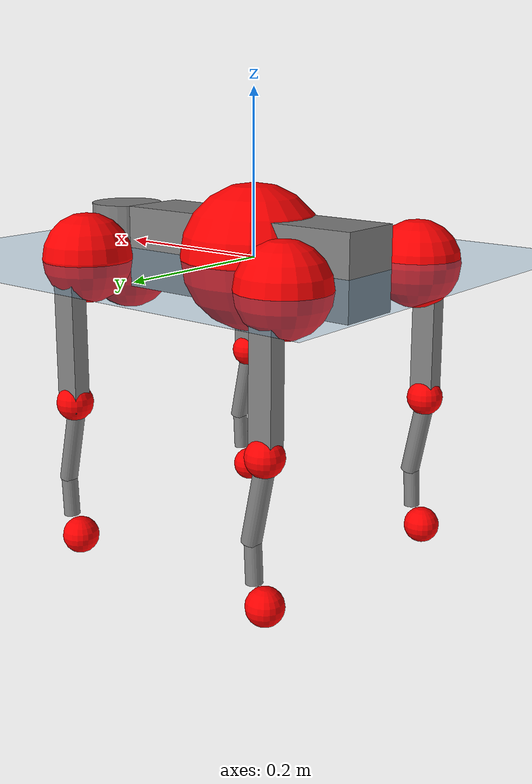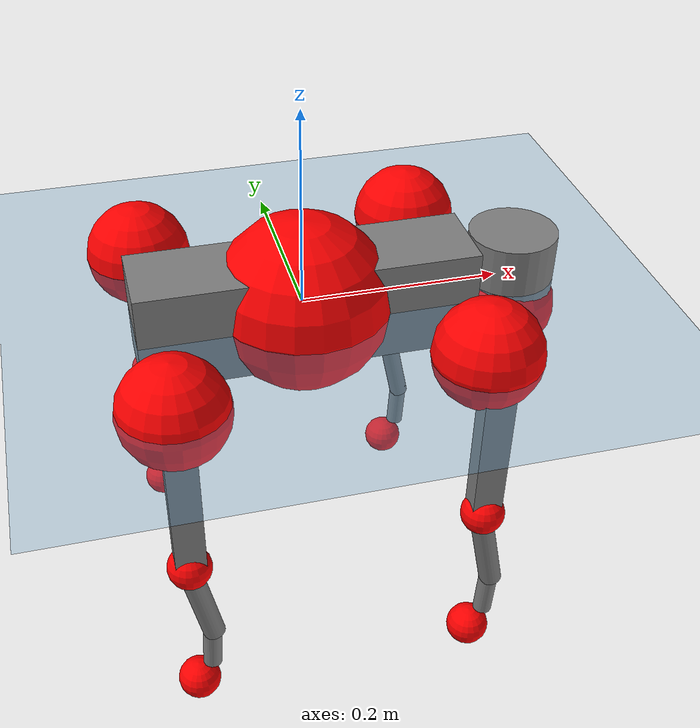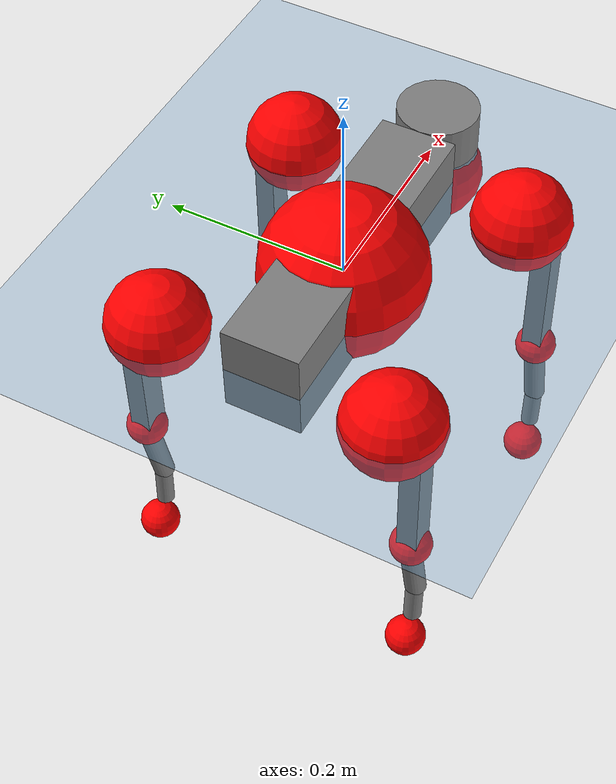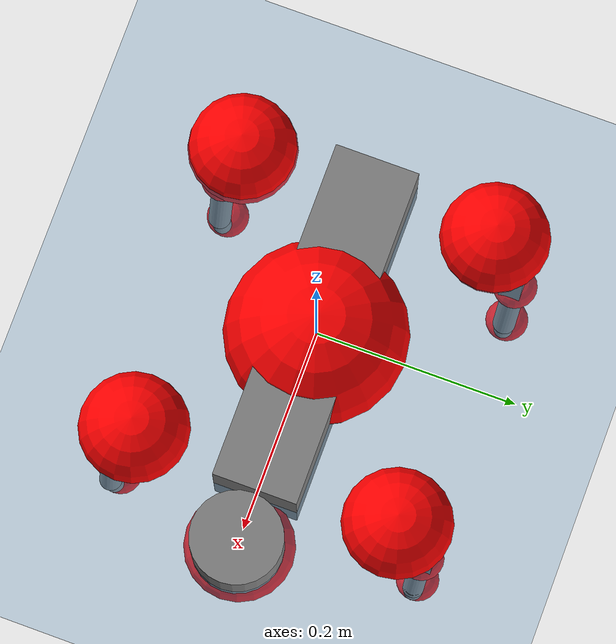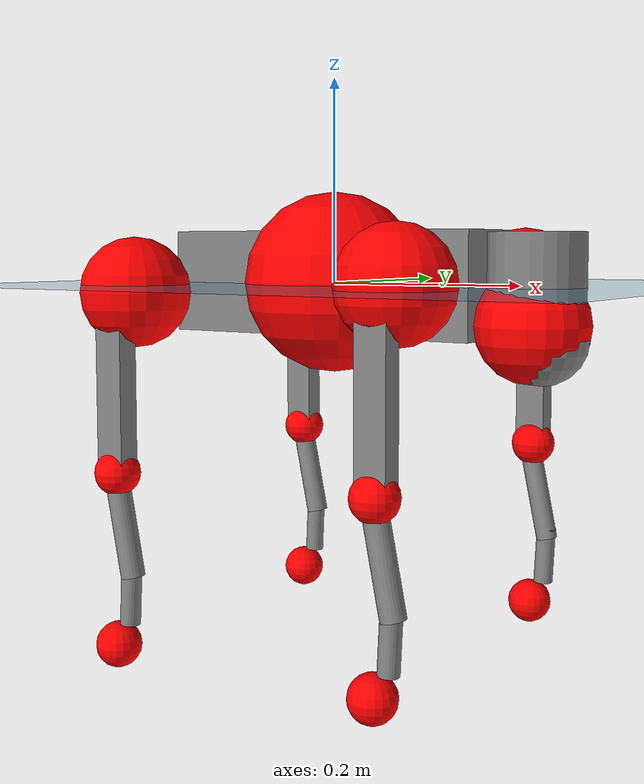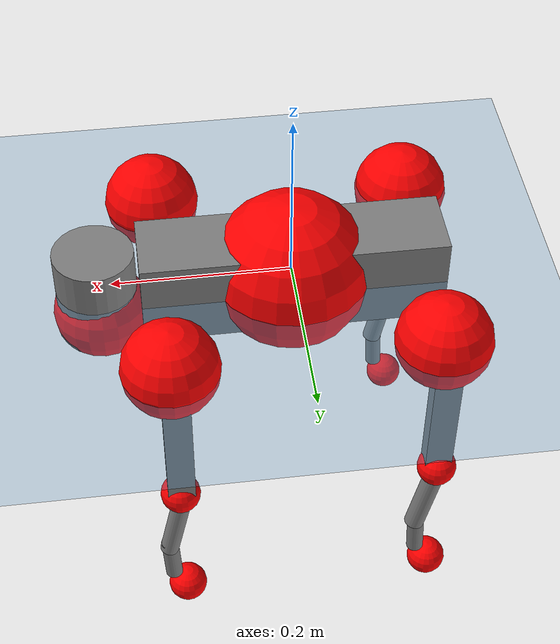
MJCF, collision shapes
<mujoco model="go2">
  <compiler angle="radian" assetdir="assets" balanceinertia="true" inertiafromgeom="false"/>

  <option timestep="0.005" density="1.2" viscosity="2e-05"/>

  <size nkey="1"/>

  <visual>
    <quality shadowsize="8192"/>
    <map shadowclip="0.5"/>
  </visual>

  <default>
    <default class="/">
      <geom contype="0" conaffinity="0" group="1" solref="-1000 -80"/>
      <site size="0.01 0.005 0.005" group="5"/>
      <general forcelimited="true" biastype="affine" gainprm="20" biasprm="0 -20 -0.5"/>
      <default class="go2">
        <joint armature="0.01" damping="0.01" frictionloss="0.2"/>
        <geom condim="1" margin="0.001"/>
        <default class="visual">
          <geom type="mesh" group="2"/>
        </default>
        <default class="collision">
          <geom group="3"/>
          <default class="foot">
            <geom size="0.022 0 0" condim="6" priority="1" friction="0.8 0.02 0.01" solimp="0.015 1 0.022"/>
          </default>
        </default>
        <default class="reward_collision_sphere">
          <geom group="5" rgba="1 0 0 1"/>
        </default>
      </default>
    </default>
  </default>

  <asset>
    <texture type="skybox" colorspace="auto" name="//unnamed_texture_0" builtin="gradient" rgb1="0.95 0.95 0.95" rgb2="0.95 0.95 0.95" width="100" height="600"/>
    <texture type="2d" colorspace="auto" name="texplane" builtin="checker" rgb1="0.345 0.575 0.748" rgb2="0.345 0.575 0.748" markrgb="1 1 1" width="512" height="512"/>
    <material name="MatPlane" class="/" texture="texplane" texuniform="true" texrepeat="2 2" specular="0.9"/>
    <material name="metal" class="/" rgba="0.9 0.95 0.95 1"/>
    <material name="black" class="/" rgba="0 0 0 1"/>
    <material name="white" class="/"/>
    <material name="gray" class="/" rgba="0.671705 0.692426 0.77427 1"/>
    <mesh name="base_0" class="/" file="base_0.obj"/>
    <mesh name="base_1" class="/" file="base_1.obj"/>
    <mesh name="base_2" class="/" file="base_2.obj"/>
    <mesh name="base_3" class="/" file="base_3.obj"/>
    <mesh name="base_4" class="/" file="base_4.obj"/>
    <mesh name="hip_0" class="/" file="hip_0.obj"/>
    <mesh name="hip_1" class="/" file="hip_1.obj"/>
    <mesh name="thigh_0" class="/" file="thigh_0.obj"/>
    <mesh name="thigh_1" class="/" file="thigh_1.obj"/>
    <mesh name="thigh_mirror_0" class="/" file="thigh_mirror_0.obj"/>
    <mesh name="thigh_mirror_1" class="/" file="thigh_mirror_1.obj"/>
    <mesh name="calf_0" class="/" file="calf_0.obj"/>
    <mesh name="calf_1" class="/" file="calf_1.obj"/>
    <mesh name="calf_mirror_0" class="/" file="calf_mirror_0.obj"/>
    <mesh name="calf_mirror_1" class="/" file="calf_mirror_1.obj"/>
    <mesh name="foot" class="/" file="foot.obj"/>
  </asset>

  <worldbody>
    <geom name="floor" class="/" size="100 100 0.125" type="plane" group="0" material="MatPlane"/>
    <light name="toplight_shadow" class="/" pos="0 0 5" dir="0.0990148 0.0990148 -0.990148" type="directional" ambient="0.04 0.04 0.04" diffuse="0.55 0.55 0.55" specular="0.12 0.12 0.12"/>
    <light name="toplight_fill" class="/" pos="0 0 5" dir="0.0990148 0.0990148 -0.990148" type="directional" castshadow="false" ambient="0.04 0.04 0.04" diffuse="0.3 0.3 0.3" specular="0.08 0.08 0.08"/>
    <body name="trunk" childclass="go2" pos="0.000195723 -1.91244e-05 0.000567894" quat="1 -4.8546e-05 -5.17786e-05 3.70808e-05">
      <inertial pos="0.0159478 0.00106457 -0.00413545" quat="-0.00085087 0.712065 -0.00240514 0.702109" mass="4.7384" diaginertia="0.0261186 0.166779 0.00796252"/>
      <joint name="//unnamed_joint_0" type="free" armature="0" damping="0" frictionloss="0"/>
      <geom name="//unnamed_geom_1" class="visual" material="black" mesh="base_0"/>
      <geom name="//unnamed_geom_2" class="visual" material="black" mesh="base_1"/>
      <geom name="//unnamed_geom_3" class="visual" material="black" mesh="base_2"/>
      <geom name="//unnamed_geom_4" class="visual" material="white" mesh="base_3"/>
      <geom name="//unnamed_geom_5" class="visual" material="gray" mesh="base_4"/>
      <geom name="trunk_1" class="collision" size="0.16792 0.0417346 0.050885" type="box"/>
      <geom name="trunk_2" class="collision" size="0.044636 0.0401724" pos="0.215556 0 0.00803098" type="cylinder"/>
      <geom name="trunk_3" class="collision" size="0.0419578" pos="0.221606 0 -0.0481859"/>
      <geom name="//unnamed_geom_9" class="reward_collision_sphere" size="0.0892719"/>
      <geom name="//unnamed_geom_10" class="reward_collision_sphere" size="0.0535631" pos="0.211774 0 -0.0361394"/>
      <site name="imu" pos="-0.0134551 0.0131326 0.0257707" size="0.00892719"/>
      <camera name="track" pos="0 -2.23745 0" quat="0.707107 0.707107 0 0" mode="trackcom"/>
      <camera name="ego_camera" pos="0.235977 0 0.0361394" quat="-0.5 -0.5 0.5 0.5"/>
      <body name="FL_hip" pos="0.144862 0.0559471 0.00104122" quat="1 -0.000197212 -0.000121584 4.74883e-05">
        <inertial pos="-0.00469654 0.00124122 0.00100075" quat="0.497053 0.500331 0.505818 0.496745" mass="0.465061" diaginertia="0.000216658 0.000982098 0.000155408"/>
        <joint name="FL_hip_joint" pos="0 0 0" axis="0.999992 -0.00320536 -0.00254899" range="-1.05188 1.10403" armature="0.00891891" damping="0" frictionloss="0.203173"/>
        <geom name="//unnamed_geom_11" class="visual" material="metal" mesh="hip_0"/>
        <geom name="//unnamed_geom_12" class="visual" material="gray" mesh="hip_1"/>
        <geom name="//unnamed_geom_13" class="collision" size="0.0410651 0.0178544" pos="0 0.0894979 0" quat="0.707107 0.707107 0 0" type="cylinder"/>
        <geom name="//unnamed_geom_14" class="reward_collision_sphere" size="0.0535631" pos="0 0.0783106 0"/>
        <body name="FL_thigh" pos="-0.00177573 0.109749 -0.000615832" quat="1 3.88474e-05 -1.04849e-05 8.26813e-06">
          <inertial pos="-0.00378553 -0.0252944 -0.0251502" quat="0.831466 0.0931278 -0.0269208 0.547053" mass="0.827309" diaginertia="0.00148087 0.0101298 0.000285085"/>
          <joint name="FL_thigh_joint" pos="0 0 0" axis="0.00598196 0.999964 -0.00605321" stiffness="0.00156226" range="-1.62225 3.50476" armature="0.00813472" damping="0.0165107" frictionloss="0.179054"/>
          <geom name="//unnamed_geom_15" class="visual" material="metal" mesh="thigh_0"/>
          <geom name="//unnamed_geom_16" class="visual" material="gray" mesh="thigh_1"/>
          <geom name="//unnamed_geom_17" class="collision" size="0.0950746 0.0109358 0.0151762" pos="0 0 -0.08553" quat="0.707107 0 0.707107 0" type="box"/>
          <body name="FL_calf" pos="0.00109456 -0.00231887 -0.17203" quat="1 6.29149e-05 1.11631e-05 2.26378e-05">
            <inertial pos="0.00621484 -0.00065172 -0.111757" quat="0.707854 0.00190012 -0.00204684 0.706353" mass="0.173072" diaginertia="0.000371802 0.00258777 1.79957e-05"/>
            <joint name="FL_calf_joint" pos="0 0 0" axis="-0.000664272 0.999954 0.00957566" range="-2.6965 -0.783982" armature="0.00814736" damping="0" frictionloss="0.170885"/>
            <geom name="//unnamed_geom_18" class="visual" material="gray" mesh="calf_0"/>
            <geom name="//unnamed_geom_19" class="visual" material="black" mesh="calf_1"/>
            <geom name="FL_calf0" class="collision" size="0.0107126 0.0535631" pos="0.00605069 0 -0.0481859" quat="0.994493 0 -0.104807 0" type="cylinder"/>
            <geom name="//unnamed_geom_21" class="collision" size="0.00981991 0.0290134" pos="0.0151267 0 -0.118859" quat="0.999688 0 0.0249974 0" type="cylinder"/>
            <geom name="//unnamed_geom_22" class="visual" pos="0 0 -0.17106" quat="1 0 0 0" material="black" mesh="foot"/>
            <geom name="FL_foot" class="foot" size="0.0161373" pos="-0.00151267 0 -0.17106"/>
            <geom name="//unnamed_geom_24" class="reward_collision_sphere" size="0.022318"/>
            <geom name="//unnamed_geom_25" class="reward_collision_sphere" size="0.022318" pos="-0.00151267 0 -0.17106"/>
            <site name="FL_foot" class="foot" pos="-0.00151267 0 -0.17106" size="0.00892719"/>
          </body>
        </body>
      </body>
      <body name="FR_hip" pos="0.144957 -0.0518382 0.00312692" quat="1 -0.000297426 -0.000122584 0.000273276">
        <inertial pos="-0.00627455 -0.00261493 -0.00163398" quat="0.499923 0.507067 0.498686 0.494239" mass="0.46398" diaginertia="0.000215011 0.00102515 0.000156485"/>
        <joint name="FR_hip_joint" pos="0 0 0" axis="0.999914 0.0102481 -0.00820302" stiffness="0.000660216" range="-1.04063 0.993803" armature="0.00969481" damping="0" frictionloss="0.200075"/>
        <geom name="//unnamed_geom_26" class="visual" pos="0 2.74959e-09 1.17936e-07" quat="4.63268e-05 1 0 0" material="metal" mesh="hip_0"/>
        <geom name="//unnamed_geom_27" class="visual" pos="0 4.45742e-09 -2.917e-07" quat="4.63268e-05 1 0 0" material="gray" mesh="hip_1"/>
        <geom name="//unnamed_geom_28" class="collision" size="0.0410651 0.0178544" pos="0 -0.0894979 0" quat="0.707107 0.707107 0 0" type="cylinder"/>
        <geom name="//unnamed_geom_29" class="reward_collision_sphere" size="0.0535631" pos="0 -0.0783106 0"/>
        <body name="FR_thigh" pos="0.000168506 -0.109416 -0.00337993" quat="0.999999 -0.000560415 -2.93974e-05 0.00126209">
          <inertial pos="-0.00497286 0.0238859 -0.029076" quat="0.553855 -0.0101263 0.0875166 0.827939" mass="0.834047" diaginertia="0.00144861 0.0100143 0.000302584"/>
          <joint name="FR_thigh_joint" pos="0 0 0" axis="-0.000300335 -0.999999 -0.00105218" stiffness="0.00426269" range="-3.48715 1.51618" armature="0.0075676" damping="0.0198074" frictionloss="0.164543"/>
          <geom name="//unnamed_geom_30" class="visual" material="metal" mesh="thigh_mirror_0"/>
          <geom name="//unnamed_geom_31" class="visual" material="gray" mesh="thigh_mirror_1"/>
          <geom name="//unnamed_geom_32" class="collision" size="0.0950746 0.0109358 0.0151762" pos="0 0 -0.08553" quat="0.707107 0 0.707107 0" type="box"/>
          <body name="FR_calf" pos="-0.00037182 -0.000892093 -0.171633" quat="1 8.65449e-05 -0.000342313 0.000575852">
            <inertial pos="0.00291018 0.000358039 -0.112448" quat="0.70267 -0.00967809 -3.67074e-05 0.71145" mass="0.169497" diaginertia="0.000371029 0.00258056 1.7141e-05"/>
            <joint name="FR_calf_joint" pos="0 0 0" axis="0.00582961 -0.999983 -0.000902531" range="0.854116 2.72547" armature="0.00890773" damping="0.00162287" frictionloss="0.153632"/>
            <geom name="//unnamed_geom_33" class="visual" material="gray" mesh="calf_mirror_0"/>
            <geom name="//unnamed_geom_34" class="visual" material="black" mesh="calf_mirror_1"/>
            <geom name="FR_calf0" class="collision" size="0.0116053 0.0535631" pos="0.00756336 0 -0.0481859" quat="0.995004 0 -0.0998334 0" type="cylinder"/>
            <geom name="//unnamed_geom_36" class="collision" size="0.00981991 0.0290134" pos="0.0151267 0 -0.118859" quat="0.999688 0 0.0249974 0" type="cylinder"/>
            <geom name="//unnamed_geom_37" class="visual" pos="0 0 -0.17106" quat="1 0 0 0" material="black" mesh="foot"/>
            <geom name="FR_foot" class="foot" size="0.02083" pos="-0.00151267 0 -0.17106"/>
            <geom name="//unnamed_geom_39" class="reward_collision_sphere" size="0.022318"/>
            <geom name="//unnamed_geom_40" class="reward_collision_sphere" size="0.022318" pos="-0.00151267 0 -0.17106"/>
            <site name="FR_foot" class="foot" pos="-0.00151267 0 -0.17106" size="0.00892719"/>
          </body>
        </body>
      </body>
      <body name="RL_hip" pos="-0.146316 0.0499083 -0.00080246" quat="0.999999 -0.000581992 -0.000916294 -0.000900119">
        <inertial pos="0.0018483 0.00167825 0.000582122" quat="0.515826 0.490733 0.498021 0.495055" mass="0.467023" diaginertia="0.000204193 0.00104426 0.000151724"/>
        <joint name="RL_hip_joint" pos="0 0 0" axis="-0.999993 -0.00233084 0.00292615" stiffness="0.00107712" range="-1.06475 1.05279" armature="0.00942884" damping="0.0165037" frictionloss="0.174602"/>
        <geom name="//unnamed_geom_41" class="visual" pos="4.07377e-10 0 7.98553e-08" quat="4.63268e-05 0 1 0" material="metal" mesh="hip_0"/>
        <geom name="//unnamed_geom_42" class="visual" pos="6.60407e-10 0 7.08203e-08" quat="4.63268e-05 0 1 0" material="gray" mesh="hip_1"/>
        <geom name="//unnamed_geom_43" class="collision" size="0.0410651 0.0178544" pos="0 0.0894979 0" quat="0.707107 0.707107 0 0" type="cylinder"/>
        <geom name="//unnamed_geom_44" class="reward_collision_sphere" size="0.0535631" pos="0 0.0783106 0"/>
        <body name="RL_thigh" pos="-0.000193081 0.106088 -0.00308111" quat="0.999999 0.000331672 -0.000926146 -0.000264955">
          <inertial pos="-0.00393227 -0.0267641 -0.0253615" quat="0.829558 0.0847143 -0.0199837 0.551595" mass="0.813392" diaginertia="0.0014471 0.0101033 0.000295972"/>
          <joint name="RL_thigh_joint" pos="0 0 0" axis="0.00577083 0.999982 0.00134964" stiffness="0.0125863" range="-0.570785 4.52332" armature="0.00846996" damping="0.0203478" frictionloss="0.203589"/>
          <geom name="//unnamed_geom_45" class="visual" material="metal" mesh="thigh_0"/>
          <geom name="//unnamed_geom_46" class="visual" material="gray" mesh="thigh_1"/>
          <geom name="//unnamed_geom_47" class="collision" size="0.0950746 0.0109358 0.0151762" pos="0 0 -0.08553" quat="0.707107 0 0.707107 0" type="box"/>
          <body name="RL_calf" pos="-0.00059375 0.0022025 -0.171956" quat="1 0.00029046 -0.000711416 6.54195e-06">
            <inertial pos="0.00508978 0.00150418 -0.112532" quat="0.711743 0.000444046 -0.00308673 0.702433" mass="0.165326" diaginertia="0.000361362 0.00241152 1.78893e-05"/>
            <joint name="RL_calf_joint" pos="0 0 0" axis="0.0124417 0.999921 0.00178386" range="-2.70909 -0.807761" armature="0.00907228" damping="0.0123123" frictionloss="0.174695"/>
            <geom name="//unnamed_geom_48" class="visual" material="gray" mesh="calf_0"/>
            <geom name="//unnamed_geom_49" class="visual" material="black" mesh="calf_1"/>
            <geom name="RL_calf0" class="collision" size="0.0116053 0.0535631" pos="0.00756336 0 -0.0481859" quat="0.995004 0 -0.0998334 0" type="cylinder"/>
            <geom name="//unnamed_geom_51" class="collision" size="0.00981991 0.0290134" pos="0.0151267 0 -0.118859" quat="0.999688 0 0.0249974 0" type="cylinder"/>
            <geom name="//unnamed_geom_52" class="visual" pos="0 0 -0.17106" quat="1 0 0 0" material="black" mesh="foot"/>
            <geom name="RL_foot" class="foot" size="0.0210645" pos="-0.00151267 0 -0.17106"/>
            <geom name="//unnamed_geom_54" class="reward_collision_sphere" size="0.022318"/>
            <geom name="//unnamed_geom_55" class="reward_collision_sphere" size="0.022318" pos="-0.00151267 0 -0.17106"/>
            <site name="RL_foot" class="foot" pos="-0.00151267 0 -0.17106" size="0.00892719"/>
          </body>
        </body>
      </body>
      <body name="RR_hip" pos="-0.14729 -0.0508104 -0.00885814" quat="1 -1.82108e-05 0.000378929 9.45049e-05">
        <inertial pos="0.00249674 -0.0045057 0.00119283" quat="0.499572 0.498254 0.497314 0.504827" mass="0.487942" diaginertia="0.000217087 0.00102506 0.000164644"/>
        <joint name="RR_hip_joint" pos="0 0 0" axis="-0.99998 0.000600044 0.00637144" range="-1.10161 1.04775" armature="0.00889458" damping="0.000456368" frictionloss="0.167679"/>
        <geom name="//unnamed_geom_56" class="visual" pos="-3.94831e-10 2.74959e-09 -3.80804e-08" quat="2.14617e-09 4.63268e-05 4.63268e-05 -1" material="metal" mesh="hip_0"/>
        <geom name="//unnamed_geom_57" class="visual" pos="-6.91438e-10 4.45742e-09 3.6252e-07" quat="2.14617e-09 4.63268e-05 4.63268e-05 -1" material="gray" mesh="hip_1"/>
        <geom name="//unnamed_geom_58" class="collision" size="0.0410651 0.0178544" pos="0 -0.0894979 0" quat="0.707107 0.707107 0 0" type="cylinder"/>
        <geom name="//unnamed_geom_59" class="reward_collision_sphere" size="0.0535631" pos="0 -0.0783106 0"/>
        <body name="RR_thigh" pos="-0.00172642 -0.105071 -0.00196836" quat="1 0.000271658 0.000625682 -0.000332161">
          <inertial pos="-0.00130037 0.0221513 -0.0247572" quat="0.542765 -0.0243112 0.0825358 0.835465" mass="0.805662" diaginertia="0.00144695 0.00999623 0.000291032"/>
          <joint name="RR_thigh_joint" pos="0 0 0" axis="-0.002794 -0.999798 0.0198935" range="-4.53585 0.489014" armature="0.00874815" damping="0" frictionloss="0.160705"/>
          <geom name="//unnamed_geom_60" class="visual" material="metal" mesh="thigh_mirror_0"/>
          <geom name="//unnamed_geom_61" class="visual" material="gray" mesh="thigh_mirror_1"/>
          <geom name="//unnamed_geom_62" class="collision" size="0.0950746 0.0109358 0.0151762" pos="0 0 -0.08553" quat="0.707107 0 0.707107 0" type="box"/>
          <body name="RR_calf" pos="-0.000895486 0.0010332 -0.171832" quat="1 -0.000285963 0.000217287 0.000615471">
            <inertial pos="0.00680925 -3.36529e-05 -0.112761" quat="0.704692 -0.00498152 0.00113284 0.709495" mass="0.174479" diaginertia="0.000376904 0.00273745 1.82929e-05"/>
            <joint name="RR_calf_joint" pos="0 0 0" axis="0.00316945 -0.999994 0.00156176" range="0.853433 2.68674" armature="0.00883922" damping="0.0109883" frictionloss="0.159573"/>
            <geom name="//unnamed_geom_63" class="visual" material="gray" mesh="calf_mirror_0"/>
            <geom name="//unnamed_geom_64" class="visual" material="black" mesh="calf_mirror_1"/>
            <geom name="RR_calf0" class="collision" size="0.0116053 0.0535631" pos="0.00756336 0 -0.0481859" quat="0.995004 0 -0.0998334 0" type="cylinder"/>
            <geom name="//unnamed_geom_66" class="collision" size="0.00981991 0.0290134" pos="0.0151267 0 -0.118859" quat="0.999688 0 0.0249974 0" type="cylinder"/>
            <geom name="//unnamed_geom_67" class="visual" pos="0 0 -0.17106" quat="1 0 0 0" material="black" mesh="foot"/>
            <geom name="RR_foot" class="foot" size="0.0201806" pos="-0.00151267 0 -0.17106"/>
            <geom name="//unnamed_geom_69" class="reward_collision_sphere" size="0.022318"/>
            <geom name="//unnamed_geom_70" class="reward_collision_sphere" size="0.022318" pos="-0.00151267 0 -0.17106"/>
            <site name="RR_foot" class="foot" pos="-0.00151267 0 -0.17106" size="0.00892719"/>
          </body>
        </body>
      </body>
    </body>
  </worldbody>

  <contact>
    <pair class="/" geom1="floor" geom2="FL_foot" name="//unnamed_contact_0"/>
    <pair class="/" geom1="floor" geom2="FR_foot" name="//unnamed_contact_1"/>
    <pair class="/" geom1="floor" geom2="RL_foot" name="//unnamed_contact_2"/>
    <pair class="/" geom1="floor" geom2="RR_foot" name="//unnamed_contact_3"/>
  </contact>

  <actuator>
    <general name="FL_hip" class="/" joint="FL_hip_joint" forcerange="-21.9674 21.9674" gainprm="18.6017" biasprm="0 -18.6017 -0.420269"/>
    <general name="FL_thigh" class="/" joint="FL_thigh_joint" forcerange="-21.9962 21.9962" gainprm="18.6017" biasprm="0 -18.6017 -0.420269"/>
    <general name="FL_calf" class="/" joint="FL_calf_joint" forcerange="-44.6131 44.6131" gainprm="18.6017" biasprm="0 -18.6017 -0.420269"/>
    <general name="FR_hip" class="/" joint="FR_hip_joint" forcerange="-20.4437 20.4437" gainprm="18.6017" biasprm="0 -18.6017 -0.420269"/>
    <general name="FR_thigh" class="/" joint="FR_thigh_joint" forcerange="-23.2712 23.2712" gainprm="18.6017" biasprm="0 -18.6017 -0.420269"/>
    <general name="FR_calf" class="/" joint="FR_calf_joint" forcerange="-40.686 40.686" gainprm="18.6017" biasprm="0 -18.6017 -0.420269"/>
    <general name="RL_hip" class="/" joint="RL_hip_joint" forcerange="-21.5713 21.5713" gainprm="18.6017" biasprm="0 -18.6017 -0.420269"/>
    <general name="RL_thigh" class="/" joint="RL_thigh_joint" forcerange="-21.533 21.533" gainprm="18.6017" biasprm="0 -18.6017 -0.420269"/>
    <general name="RL_calf" class="/" joint="RL_calf_joint" forcerange="-41.5194 41.5194" gainprm="18.6017" biasprm="0 -18.6017 -0.420269"/>
    <general name="RR_hip" class="/" joint="RR_hip_joint" forcerange="-21.0302 21.0302" gainprm="18.6017" biasprm="0 -18.6017 -0.420269"/>
    <general name="RR_thigh" class="/" joint="RR_thigh_joint" forcerange="-19.1037 19.1037" gainprm="18.6017" biasprm="0 -18.6017 -0.420269"/>
    <general name="RR_calf" class="/" joint="RR_calf_joint" forcerange="-44.5025 44.5025" gainprm="18.6017" biasprm="0 -18.6017 -0.420269"/>
  </actuator>

  <sensor>
    <gyro site="imu" name="imu_angular_velocity"/>
    <velocimeter site="imu" name="imu_linear_velocity"/>
    <framelinvel objtype="site" objname="FL_foot" name="FL_foot_global_linear_velocity"/>
    <framelinvel objtype="site" objname="FR_foot" name="FR_foot_global_linear_velocity"/>
    <framelinvel objtype="site" objname="RL_foot" name="RL_foot_global_linear_velocity"/>
    <framelinvel objtype="site" objname="RR_foot" name="RR_foot_global_linear_velocity"/>
  </sensor>

  <keyframe>
    <key name="home" qpos="0 0 0.325 1 0 0 0 0.1 0.8 -1.5 -0.1 -0.8 1.5 -0.1 0.8 -1.5 0.1 -0.8 1.5"/>
  </keyframe>
</mujoco>
